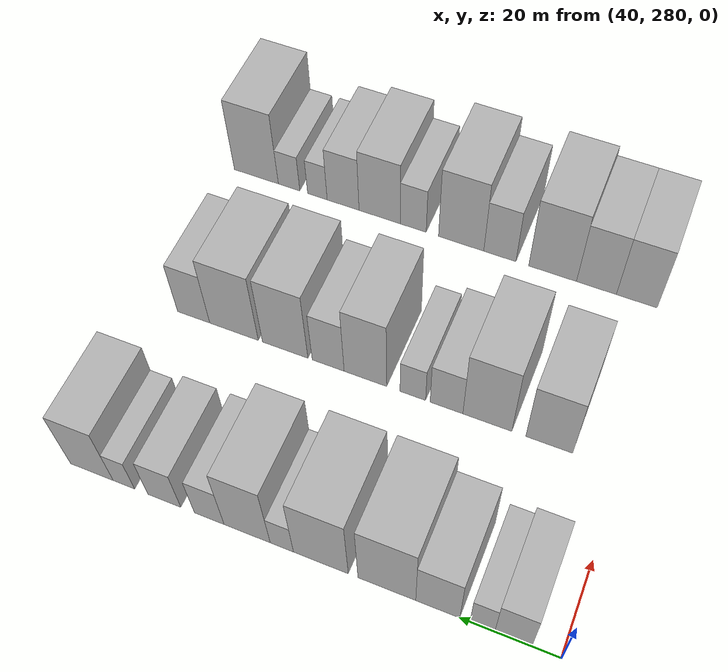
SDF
<sdf version="1.6">
 <world name="default">
  <model name="building_73">
   <static>1</static>
   <pose>50.0000 289.3360 0 0.000000 0.000000 0.000000</pose>
   <link name="link">
    <pose>0 0 7.50 0 0 0</pose>
    <collision name="collision"><geometry><box><size>20.0000 7.2604 15.0000</size></box></geometry></collision>
    <visual name="visual">
     <cast_shadows>0</cast_shadows>
     <geometry><box><size>20.0000 7.2604 15.0000</size></box></geometry>
     <material>
      <script>
       <uri>model://HANNAS_wall/materials/scripts</uri>
       <uri>model://HANNAS_wall/materials/textures</uri>
       <name>vrc/HANNAS_wall</name>
      </script>
     </material>
    </visual>
   </link>
  </model>
  <model name="building_74">
   <static>1</static>
   <pose>50.0000 295.4205 0 0.000000 0.000000 0.000000</pose>
   <link name="link">
    <pose>0 0 6.00 0 0 0</pose>
    <collision name="collision"><geometry><box><size>20.0000 4.9085 12.0000</size></box></geometry></collision>
    <visual name="visual">
     <cast_shadows>0</cast_shadows>
     <geometry><box><size>20.0000 4.9085 12.0000</size></box></geometry>
     <material>
      <script>
       <uri>model://HANNAS_wall/materials/scripts</uri>
       <uri>model://HANNAS_wall/materials/textures</uri>
       <name>vrc/HANNAS_wall</name>
      </script>
     </material>
    </visual>
   </link>
  </model>
  <model name="building_75">
   <static>1</static>
   <pose>50.0000 304.2933 0 0.000000 0.000000 0.000000</pose>
   <link name="link">
    <pose>0 0 9.00 0 0 0</pose>
    <collision name="collision"><geometry><box><size>20.0000 8.8372 18.0000</size></box></geometry></collision>
    <visual name="visual">
     <cast_shadows>0</cast_shadows>
     <geometry><box><size>20.0000 8.8372 18.0000</size></box></geometry>
     <material>
      <script>
       <uri>model://HANNAS_wall/materials/scripts</uri>
       <uri>model://HANNAS_wall/materials/textures</uri>
       <name>vrc/HANNAS_wall</name>
      </script>
     </material>
    </visual>
   </link>
  </model>
  <model name="building_76">
   <static>1</static>
   <pose>50.0000 314.6192 0 0.000000 0.000000 0.000000</pose>
   <link name="link">
    <pose>0 0 12.00 0 0 0</pose>
    <collision name="collision"><geometry><box><size>20.0000 11.8146 24.0000</size></box></geometry></collision>
    <visual name="visual">
     <cast_shadows>0</cast_shadows>
     <geometry><box><size>20.0000 11.8146 24.0000</size></box></geometry>
     <material>
      <script>
       <uri>model://HANNAS_wall/materials/scripts</uri>
       <uri>model://HANNAS_wall/materials/textures</uri>
       <name>vrc/HANNAS_wall</name>
      </script>
     </material>
    </visual>
   </link>
  </model>
  <model name="building_77">
   <static>1</static>
   <pose>50.0000 328.2675 0 0.000000 0.000000 0.000000</pose>
   <link name="link">
    <pose>0 0 12.00 0 0 0</pose>
    <collision name="collision"><geometry><box><size>20.0000 11.4820 24.0000</size></box></geometry></collision>
    <visual name="visual">
     <cast_shadows>0</cast_shadows>
     <geometry><box><size>20.0000 11.4820 24.0000</size></box></geometry>
     <material>
      <script>
       <uri>model://HANNAS_wall/materials/scripts</uri>
       <uri>model://HANNAS_wall/materials/textures</uri>
       <name>vrc/HANNAS_wall</name>
      </script>
     </material>
    </visual>
   </link>
  </model>
  <model name="building_78">
   <static>1</static>
   <pose>50.0000 336.4763 0 0.000000 0.000000 0.000000</pose>
   <link name="link">
    <pose>0 0 6.00 0 0 0</pose>
    <collision name="collision"><geometry><box><size>20.0000 4.9357 12.0000</size></box></geometry></collision>
    <visual name="visual">
     <cast_shadows>0</cast_shadows>
     <geometry><box><size>20.0000 4.9357 12.0000</size></box></geometry>
     <material>
      <script>
       <uri>model://HANNAS_wall/materials/scripts</uri>
       <uri>model://HANNAS_wall/materials/textures</uri>
       <name>vrc/HANNAS_wall</name>
      </script>
     </material>
    </visual>
   </link>
  </model>
  <model name="building_79">
   <static>1</static>
   <pose>50.0000 343.9166 0 0.000000 0.000000 0.000000</pose>
   <link name="link">
    <pose>0 0 12.00 0 0 0</pose>
    <collision name="collision"><geometry><box><size>20.0000 9.9449 24.0000</size></box></geometry></collision>
    <visual name="visual">
     <cast_shadows>0</cast_shadows>
     <geometry><box><size>20.0000 9.9449 24.0000</size></box></geometry>
     <material>
      <script>
       <uri>model://HANNAS_wall/materials/scripts</uri>
       <uri>model://HANNAS_wall/materials/textures</uri>
       <name>vrc/HANNAS_wall</name>
      </script>
     </material>
    </visual>
   </link>
  </model>
  <model name="building_80">
   <static>1</static>
   <pose>50.0000 352.1392 0 0.000000 0.000000 0.000000</pose>
   <link name="link">
    <pose>0 0 7.50 0 0 0</pose>
    <collision name="collision"><geometry><box><size>20.0000 6.5004 15.0000</size></box></geometry></collision>
    <visual name="visual">
     <cast_shadows>0</cast_shadows>
     <geometry><box><size>20.0000 6.5004 15.0000</size></box></geometry>
     <material>
      <script>
       <uri>model://HANNAS_wall/materials/scripts</uri>
       <uri>model://HANNAS_wall/materials/textures</uri>
       <name>vrc/HANNAS_wall</name>
      </script>
     </material>
    </visual>
   </link>
  </model>
  <model name="building_81">
   <static>1</static>
   <pose>50.0000 362.0361 0 0.000000 0.000000 0.000000</pose>
   <link name="link">
    <pose>0 0 7.50 0 0 0</pose>
    <collision name="collision"><geometry><box><size>20.0000 7.2933 15.0000</size></box></geometry></collision>
    <visual name="visual">
     <cast_shadows>0</cast_shadows>
     <geometry><box><size>20.0000 7.2933 15.0000</size></box></geometry>
     <material>
      <script>
       <uri>model://HANNAS_wall/materials/scripts</uri>
       <uri>model://HANNAS_wall/materials/textures</uri>
       <name>vrc/HANNAS_wall</name>
      </script>
     </material>
    </visual>
   </link>
  </model>
  <model name="building_82">
   <static>1</static>
   <pose>50.0000 371.1086 0 0.000000 0.000000 0.000000</pose>
   <link name="link">
    <pose>0 0 6.00 0 0 0</pose>
    <collision name="collision"><geometry><box><size>20.0000 4.8518 12.0000</size></box></geometry></collision>
    <visual name="visual">
     <cast_shadows>0</cast_shadows>
     <geometry><box><size>20.0000 4.8518 12.0000</size></box></geometry>
     <material>
      <script>
       <uri>model://HANNAS_wall/materials/scripts</uri>
       <uri>model://HANNAS_wall/materials/textures</uri>
       <name>vrc/HANNAS_wall</name>
      </script>
     </material>
    </visual>
   </link>
  </model>
  <model name="building_83">
   <static>1</static>
   <pose>50.0000 378.4152 0 0.000000 0.000000 0.000000</pose>
   <link name="link">
    <pose>0 0 10.50 0 0 0</pose>
    <collision name="collision"><geometry><box><size>20.0000 9.7613 21.0000</size></box></geometry></collision>
    <visual name="visual">
     <cast_shadows>0</cast_shadows>
     <geometry><box><size>20.0000 9.7613 21.0000</size></box></geometry>
     <material>
      <script>
       <uri>model://HANNAS_wall/materials/scripts</uri>
       <uri>model://HANNAS_wall/materials/textures</uri>
       <name>vrc/HANNAS_wall</name>
      </script>
     </material>
    </visual>
   </link>
  </model>
  <model name="building_155">
   <static>1</static>
   <pose>90.0000 295.2616 0 0.000000 0.000000 0.000000</pose>
   <link name="link">
    <pose>0 0 10.50 0 0 0</pose>
    <collision name="collision"><geometry><box><size>20.0000 9.9870 21.0000</size></box></geometry></collision>
    <visual name="visual">
     <cast_shadows>0</cast_shadows>
     <geometry><box><size>20.0000 9.9870 21.0000</size></box></geometry>
     <material>
      <script>
       <uri>model://HANNAS_wall/materials/scripts</uri>
       <uri>model://HANNAS_wall/materials/textures</uri>
       <name>vrc/HANNAS_wall</name>
      </script>
     </material>
    </visual>
   </link>
  </model>
  <model name="building_156">
   <static>1</static>
   <pose>90.0000 308.5916 0 0.000000 0.000000 0.000000</pose>
   <link name="link">
    <pose>0 0 12.00 0 0 0</pose>
    <collision name="collision"><geometry><box><size>20.0000 10.6731 24.0000</size></box></geometry></collision>
    <visual name="visual">
     <cast_shadows>0</cast_shadows>
     <geometry><box><size>20.0000 10.6731 24.0000</size></box></geometry>
     <material>
      <script>
       <uri>model://HANNAS_wall/materials/scripts</uri>
       <uri>model://HANNAS_wall/materials/textures</uri>
       <name>vrc/HANNAS_wall</name>
      </script>
     </material>
    </visual>
   </link>
  </model>
  <model name="building_157">
   <static>1</static>
   <pose>90.0000 317.5486 0 0.000000 0.000000 0.000000</pose>
   <link name="link">
    <pose>0 0 7.50 0 0 0</pose>
    <collision name="collision"><geometry><box><size>20.0000 7.2409 15.0000</size></box></geometry></collision>
    <visual name="visual">
     <cast_shadows>0</cast_shadows>
     <geometry><box><size>20.0000 7.2409 15.0000</size></box></geometry>
     <material>
      <script>
       <uri>model://HANNAS_wall/materials/scripts</uri>
       <uri>model://HANNAS_wall/materials/textures</uri>
       <name>vrc/HANNAS_wall</name>
      </script>
     </material>
    </visual>
   </link>
  </model>
  <model name="building_158">
   <static>1</static>
   <pose>90.0000 325.0312 0 0.000000 0.000000 0.000000</pose>
   <link name="link">
    <pose>0 0 6.00 0 0 0</pose>
    <collision name="collision"><geometry><box><size>20.0000 5.7243 12.0000</size></box></geometry></collision>
    <visual name="visual">
     <cast_shadows>0</cast_shadows>
     <geometry><box><size>20.0000 5.7243 12.0000</size></box></geometry>
     <material>
      <script>
       <uri>model://HANNAS_wall/materials/scripts</uri>
       <uri>model://HANNAS_wall/materials/textures</uri>
       <name>vrc/HANNAS_wall</name>
      </script>
     </material>
    </visual>
   </link>
  </model>
  <model name="building_159">
   <static>1</static>
   <pose>90.0000 335.7489 0 0.000000 0.000000 0.000000</pose>
   <link name="link">
    <pose>0 0 12.00 0 0 0</pose>
    <collision name="collision"><geometry><box><size>20.0000 9.7111 24.0000</size></box></geometry></collision>
    <visual name="visual">
     <cast_shadows>0</cast_shadows>
     <geometry><box><size>20.0000 9.7111 24.0000</size></box></geometry>
     <material>
      <script>
       <uri>model://HANNAS_wall/materials/scripts</uri>
       <uri>model://HANNAS_wall/materials/textures</uri>
       <name>vrc/HANNAS_wall</name>
      </script>
     </material>
    </visual>
   </link>
  </model>
  <model name="building_160">
   <static>1</static>
   <pose>90.0000 344.2893 0 0.000000 0.000000 0.000000</pose>
   <link name="link">
    <pose>0 0 9.00 0 0 0</pose>
    <collision name="collision"><geometry><box><size>20.0000 7.3697 18.0000</size></box></geometry></collision>
    <visual name="visual">
     <cast_shadows>0</cast_shadows>
     <geometry><box><size>20.0000 7.3697 18.0000</size></box></geometry>
     <material>
      <script>
       <uri>model://HANNAS_wall/materials/scripts</uri>
       <uri>model://HANNAS_wall/materials/textures</uri>
       <name>vrc/HANNAS_wall</name>
      </script>
     </material>
    </visual>
   </link>
  </model>
  <model name="building_161">
   <static>1</static>
   <pose>90.0000 354.3084 0 0.000000 0.000000 0.000000</pose>
   <link name="link">
    <pose>0 0 12.00 0 0 0</pose>
    <collision name="collision"><geometry><box><size>20.0000 10.6686 24.0000</size></box></geometry></collision>
    <visual name="visual">
     <cast_shadows>0</cast_shadows>
     <geometry><box><size>20.0000 10.6686 24.0000</size></box></geometry>
     <material>
      <script>
       <uri>model://HANNAS_wall/materials/scripts</uri>
       <uri>model://HANNAS_wall/materials/textures</uri>
       <name>vrc/HANNAS_wall</name>
      </script>
     </material>
    </visual>
   </link>
  </model>
  <model name="building_162">
   <static>1</static>
   <pose>90.0000 366.4593 0 0.000000 0.000000 0.000000</pose>
   <link name="link">
    <pose>0 0 12.00 0 0 0</pose>
    <collision name="collision"><geometry><box><size>20.0000 11.6332 24.0000</size></box></geometry></collision>
    <visual name="visual">
     <cast_shadows>0</cast_shadows>
     <geometry><box><size>20.0000 11.6332 24.0000</size></box></geometry>
     <material>
      <script>
       <uri>model://HANNAS_wall/materials/scripts</uri>
       <uri>model://HANNAS_wall/materials/textures</uri>
       <name>vrc/HANNAS_wall</name>
      </script>
     </material>
    </visual>
   </link>
  </model>
  <model name="building_163">
   <static>1</static>
   <pose>90.0000 376.1790 0 0.000000 0.000000 0.000000</pose>
   <link name="link">
    <pose>0 0 9.00 0 0 0</pose>
    <collision name="collision"><geometry><box><size>20.0000 7.8061 18.0000</size></box></geometry></collision>
    <visual name="visual">
     <cast_shadows>0</cast_shadows>
     <geometry><box><size>20.0000 7.8061 18.0000</size></box></geometry>
     <material>
      <script>
       <uri>model://HANNAS_wall/materials/scripts</uri>
       <uri>model://HANNAS_wall/materials/textures</uri>
       <name>vrc/HANNAS_wall</name>
      </script>
     </material>
    </visual>
   </link>
  </model>
  <model name="building_238">
   <static>1</static>
   <pose>130.0000 288.0224 0 0.000000 0.000000 0.000000</pose>
   <link name="link">
    <pose>0 0 10.50 0 0 0</pose>
    <collision name="collision"><geometry><box><size>20.0000 9.2210 21.0000</size></box></geometry></collision>
    <visual name="visual">
     <cast_shadows>0</cast_shadows>
     <geometry><box><size>20.0000 9.2210 21.0000</size></box></geometry>
     <material>
      <script>
       <uri>model://HANNAS_wall/materials/scripts</uri>
       <uri>model://HANNAS_wall/materials/textures</uri>
       <name>vrc/HANNAS_wall</name>
      </script>
     </material>
    </visual>
   </link>
  </model>
  <model name="building_239">
   <static>1</static>
   <pose>130.0000 297.2086 0 0.000000 0.000000 0.000000</pose>
   <link name="link">
    <pose>0 0 10.50 0 0 0</pose>
    <collision name="collision"><geometry><box><size>20.0000 9.1515 21.0000</size></box></geometry></collision>
    <visual name="visual">
     <cast_shadows>0</cast_shadows>
     <geometry><box><size>20.0000 9.1515 21.0000</size></box></geometry>
     <material>
      <script>
       <uri>model://HANNAS_wall/materials/scripts</uri>
       <uri>model://HANNAS_wall/materials/textures</uri>
       <name>vrc/HANNAS_wall</name>
      </script>
     </material>
    </visual>
   </link>
  </model>
  <model name="building_240">
   <static>1</static>
   <pose>130.0000 307.3562 0 0.000000 0.000000 0.000000</pose>
   <link name="link">
    <pose>0 0 12.00 0 0 0</pose>
    <collision name="collision"><geometry><box><size>20.0000 11.1436 24.0000</size></box></geometry></collision>
    <visual name="visual">
     <cast_shadows>0</cast_shadows>
     <geometry><box><size>20.0000 11.1436 24.0000</size></box></geometry>
     <material>
      <script>
       <uri>model://HANNAS_wall/materials/scripts</uri>
       <uri>model://HANNAS_wall/materials/textures</uri>
       <name>vrc/HANNAS_wall</name>
      </script>
     </material>
    </visual>
   </link>
  </model>
  <model name="building_241">
   <static>1</static>
   <pose>130.0000 319.7520 0 0.000000 0.000000 0.000000</pose>
   <link name="link">
    <pose>0 0 9.00 0 0 0</pose>
    <collision name="collision"><geometry><box><size>20.0000 7.6482 18.0000</size></box></geometry></collision>
    <visual name="visual">
     <cast_shadows>0</cast_shadows>
     <geometry><box><size>20.0000 7.6482 18.0000</size></box></geometry>
     <material>
      <script>
       <uri>model://HANNAS_wall/materials/scripts</uri>
       <uri>model://HANNAS_wall/materials/textures</uri>
       <name>vrc/HANNAS_wall</name>
      </script>
     </material>
    </visual>
   </link>
  </model>
  <model name="building_242">
   <static>1</static>
   <pose>130.0000 329.0286 0 0.000000 0.000000 0.000000</pose>
   <link name="link">
    <pose>0 0 12.00 0 0 0</pose>
    <collision name="collision"><geometry><box><size>20.0000 10.9050 24.0000</size></box></geometry></collision>
    <visual name="visual">
     <cast_shadows>0</cast_shadows>
     <geometry><box><size>20.0000 10.9050 24.0000</size></box></geometry>
     <material>
      <script>
       <uri>model://HANNAS_wall/materials/scripts</uri>
       <uri>model://HANNAS_wall/materials/textures</uri>
       <name>vrc/HANNAS_wall</name>
      </script>
     </material>
    </visual>
   </link>
  </model>
  <model name="building_243">
   <static>1</static>
   <pose>130.0000 340.6648 0 0.000000 0.000000 0.000000</pose>
   <link name="link">
    <pose>0 0 7.50 0 0 0</pose>
    <collision name="collision"><geometry><box><size>20.0000 6.3673 15.0000</size></box></geometry></collision>
    <visual name="visual">
     <cast_shadows>0</cast_shadows>
     <geometry><box><size>20.0000 6.3673 15.0000</size></box></geometry>
     <material>
      <script>
       <uri>model://HANNAS_wall/materials/scripts</uri>
       <uri>model://HANNAS_wall/materials/textures</uri>
       <name>vrc/HANNAS_wall</name>
      </script>
     </material>
    </visual>
   </link>
  </model>
  <model name="building_244">
   <static>1</static>
   <pose>130.0000 348.9657 0 0.000000 0.000000 0.000000</pose>
   <link name="link">
    <pose>0 0 10.50 0 0 0</pose>
    <collision name="collision"><geometry><box><size>20.0000 10.2343 21.0000</size></box></geometry></collision>
    <visual name="visual">
     <cast_shadows>0</cast_shadows>
     <geometry><box><size>20.0000 10.2343 21.0000</size></box></geometry>
     <material>
      <script>
       <uri>model://HANNAS_wall/materials/scripts</uri>
       <uri>model://HANNAS_wall/materials/textures</uri>
       <name>vrc/HANNAS_wall</name>
      </script>
     </material>
    </visual>
   </link>
  </model>
  <model name="building_245">
   <static>1</static>
   <pose>130.0000 358.0982 0 0.000000 0.000000 0.000000</pose>
   <link name="link">
    <pose>0 0 9.00 0 0 0</pose>
    <collision name="collision"><geometry><box><size>20.0000 8.0308 18.0000</size></box></geometry></collision>
    <visual name="visual">
     <cast_shadows>0</cast_shadows>
     <geometry><box><size>20.0000 8.0308 18.0000</size></box></geometry>
     <material>
      <script>
       <uri>model://HANNAS_wall/materials/scripts</uri>
       <uri>model://HANNAS_wall/materials/textures</uri>
       <name>vrc/HANNAS_wall</name>
      </script>
     </material>
    </visual>
   </link>
  </model>
  <model name="building_246">
   <static>1</static>
   <pose>130.0000 364.5877 0 0.000000 0.000000 0.000000</pose>
   <link name="link">
    <pose>0 0 6.00 0 0 0</pose>
    <collision name="collision"><geometry><box><size>20.0000 4.9481 12.0000</size></box></geometry></collision>
    <visual name="visual">
     <cast_shadows>0</cast_shadows>
     <geometry><box><size>20.0000 4.9481 12.0000</size></box></geometry>
     <material>
      <script>
       <uri>model://HANNAS_wall/materials/scripts</uri>
       <uri>model://HANNAS_wall/materials/textures</uri>
       <name>vrc/HANNAS_wall</name>
      </script>
     </material>
    </visual>
   </link>
  </model>
  <model name="building_247">
   <static>1</static>
   <pose>130.0000 371.8137 0 0.000000 0.000000 0.000000</pose>
   <link name="link">
    <pose>0 0 6.00 0 0 0</pose>
    <collision name="collision"><geometry><box><size>20.0000 5.5039 12.0000</size></box></geometry></collision>
    <visual name="visual">
     <cast_shadows>0</cast_shadows>
     <geometry><box><size>20.0000 5.5039 12.0000</size></box></geometry>
     <material>
      <script>
       <uri>model://HANNAS_wall/materials/scripts</uri>
       <uri>model://HANNAS_wall/materials/textures</uri>
       <name>vrc/HANNAS_wall</name>
      </script>
     </material>
    </visual>
   </link>
  </model>
  <model name="building_248">
   <static>1</static>
   <pose>130.0000 380.2874 0 0.000000 0.000000 0.000000</pose>
   <link name="link">
    <pose>0 0 12.00 0 0 0</pose>
    <collision name="collision"><geometry><box><size>20.0000 11.4435 24.0000</size></box></geometry></collision>
    <visual name="visual">
     <cast_shadows>0</cast_shadows>
     <geometry><box><size>20.0000 11.4435 24.0000</size></box></geometry>
     <material>
      <script>
       <uri>model://HANNAS_wall/materials/scripts</uri>
       <uri>model://HANNAS_wall/materials/textures</uri>
       <name>vrc/HANNAS_wall</name>
      </script>
     </material>
    </visual>
   </link>
  </model>
 </world>
</sdf>
